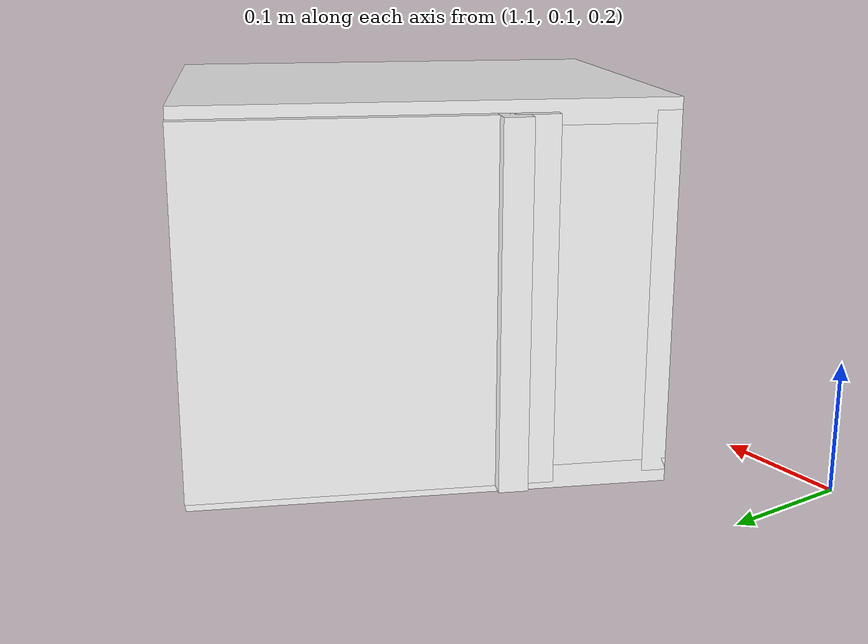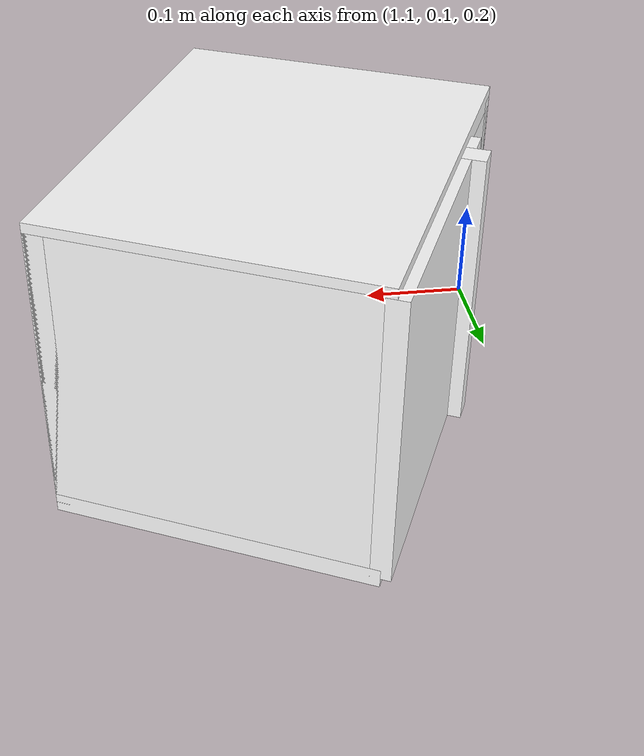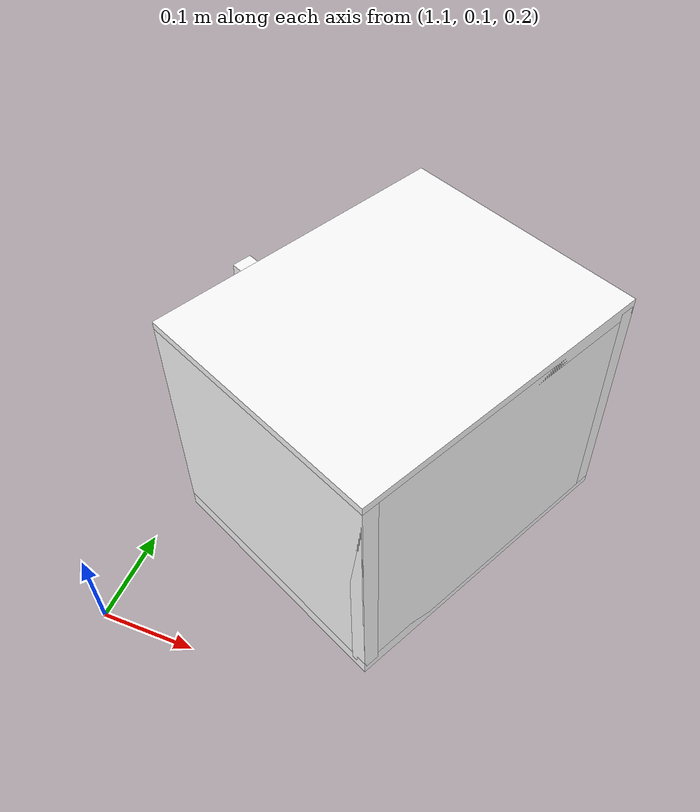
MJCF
<mujoco model="cabinet">
    <compiler angle="radian" eulerseq='zxy' />
    <option gravity = "0 0 0" />
    <option>
        <flag contact = "disable"/>
    </option>
    <statistic	extent="1.0" center="0.0 0.0 0.0"/>
    <visual>
        <map fogstart="3" fogend="5" force="0.1" znear=" 0.100000 " zfar=" 12.000000 "/>
    </visual>
    <size njmax="500" nconmax="100" />
    <actuator>
        <velocity joint="bottom_left_hinge" name="viva_revolution" kv='10'></velocity>
    </actuator>
    <asset>
        <texture builtin="flat" name="tabletex" height="32" width="32" rgb1="1 1 1" type="cube"></texture>
        <texture builtin="flat" name="objtex" height="32" width="32" rgb1="1 1 1" type="cube"></texture>
        <texture builtin="flat" name="handletex" height="32" width="32" rgb1="1 1 1" type="cube"></texture>
        <texture builtin="flat" name="wallpaper" height="32" width="32" rgb1="1 0 0" type="cube"></texture>
        <texture builtin="flat" name="kp" height="32" width="32" rgb1="1 1 1" type="cube"></texture>
        <material name="geomTable" shininess="0.03" specular="0.75" texture="tabletex"></material>
        <material name="geomObj" shininess="0.03" specular="0.75" texture="objtex"></material>
        <material name="geomHandle" shininess="0.03" specular="0.75" texture="handletex"></material>
        <material name="ax" shininess="0.03" specular="0.75" texture="wallpaper"></material>
        <material name="bg" shininess="0.03" specular="0.75" texture="wallpaper"></material>
        <material name="geomKeypad" shininess="0.03" specular="0.75" texture="kp"></material>
    </asset>
    <worldbody>
        <body name="cabinet_bottom" pos= " 1.324063 0.333100 0.240267 "  quat= " 0.216643 0.000000 0.000000 0.976251" >
            <inertial pos="0 0 0" mass="1" diaginertia="1 1 1" />
            <geom size= " 0.134095 0.164586 0.008403 "  type="box" material="geomObj" name="b"/>
            <body name="cabinet_left" pos= " 0.000000 -0.156183 0.125826 " >
                <inertial pos="0 0 0" mass="1" diaginertia="1 1 1" />
                <geom size= " 0.134095 0.008403 0.125826 "  type="box" material="geomObj" name="c" />
            </body>
            <body name="cabinet_right" pos= " 0.000000 0.156183 0.125826 " >
                <inertial pos="0 0 0" mass="1" diaginertia="1 1 1" />
                <geom size= " 0.134095 0.008403 0.125826 "  type="box" material="geomObj" name="d" />
            </body>
            <body name="cabinet_top" pos= " 0.000000 0.000000 0.251653 " >
                <inertial pos="0 0 0" mass="1" diaginertia="1 1 1" />
                <geom size= " 0.134095 0.164586 0.008403 "  type="box" material="geomObj" name="e"/>
            </body>
            <body name="cabinet_back" pos= " -0.125692 0.000000 0.125826 "  >
                <inertial pos="0 0 0" mass="1" diaginertia="1 1 1" />
                <geom size= " 0.008403 0.164586 0.125826 "  type="box" material="geomObj" name="f" />
            </body>
            <body name="cabinet_keypad" pos= " 0.008403 0.122440 0.125826 " >
                <inertial pos="0 0 0" mass="1" diaginertia="1 1 1" />
                <geom size= " 0.125692 0.041147 0.117424 "  type="box" material="geomKeypad" name="keypizzlemynizzle" />
            </body>
            <body name="cabinet_left_hinge" pos= " 0.134095 -0.164586 0.125826 " >
                <inertial pos= " 0.000000 0.123440 0.000000 "  mass="1" diaginertia="1 1 1" />
                <joint name="bottom_left_hinge" type="hinge" pos="0 0 0" axis="0 0 1" limited="true" range= "-2.3 0"  />
                <geom size= " 0.008403 0.123440 0.125826 "  pos= " 0.000000 0.123440 0.000000 "  type="box" material="geomObj" name="g"/>
                <body name="handle_link" pos= " 0.010000 0.216879 0.000000 " >
                    <inertial pos="0 0 0" mass="1" diaginertia="1 1 1" />
                    <geom size= " 0.010000 0.010000 0.125826 "  type="box" material="geomHandle" name="h"/>
                </body>
            </body>
        </body>
        <body name="external_camera_body_0" pos="0.0 0 0.00" >
            <camera euler="-1.57 1.57 0.0" fovy=" 54.280851 " name="external_camera_0" pos="0.0 0 0"></camera>
            <inertial pos= " 0.00 0.0 0.000000 " mass="1" diaginertia="1 1 1" />
            <joint name="cam_j" pos="0.0 0 0" axis = "1 0 0" type="free" />
        </body>
    </worldbody>
</mujoco>
